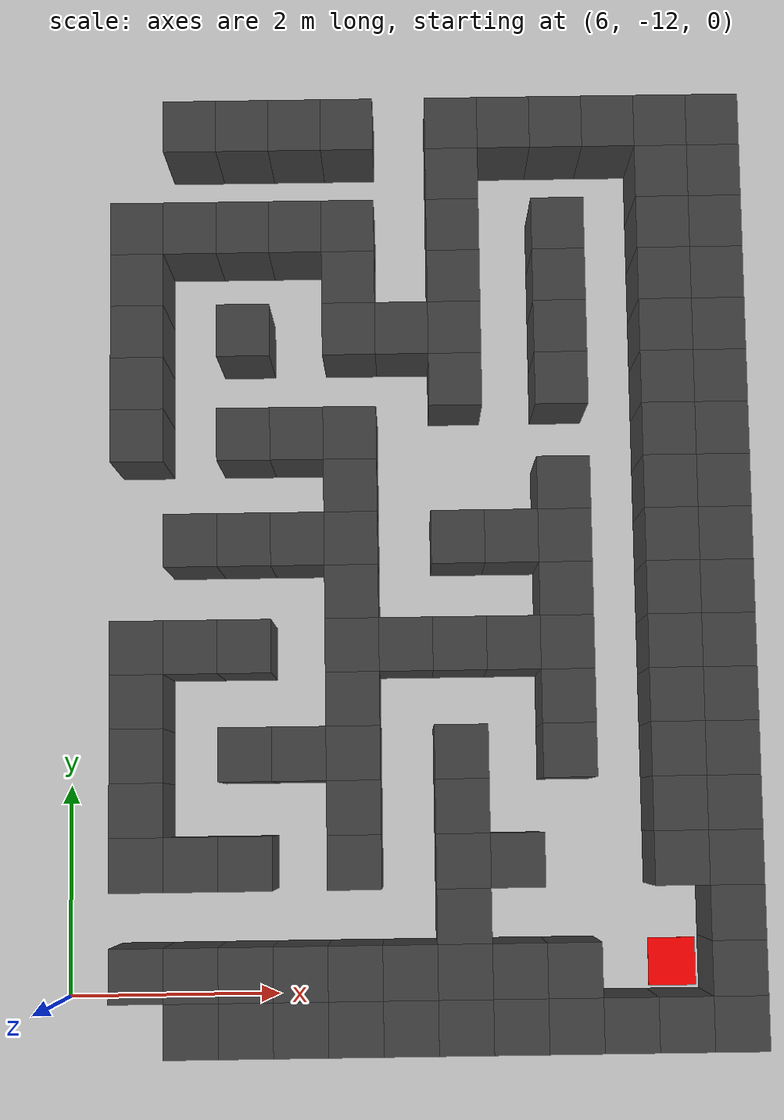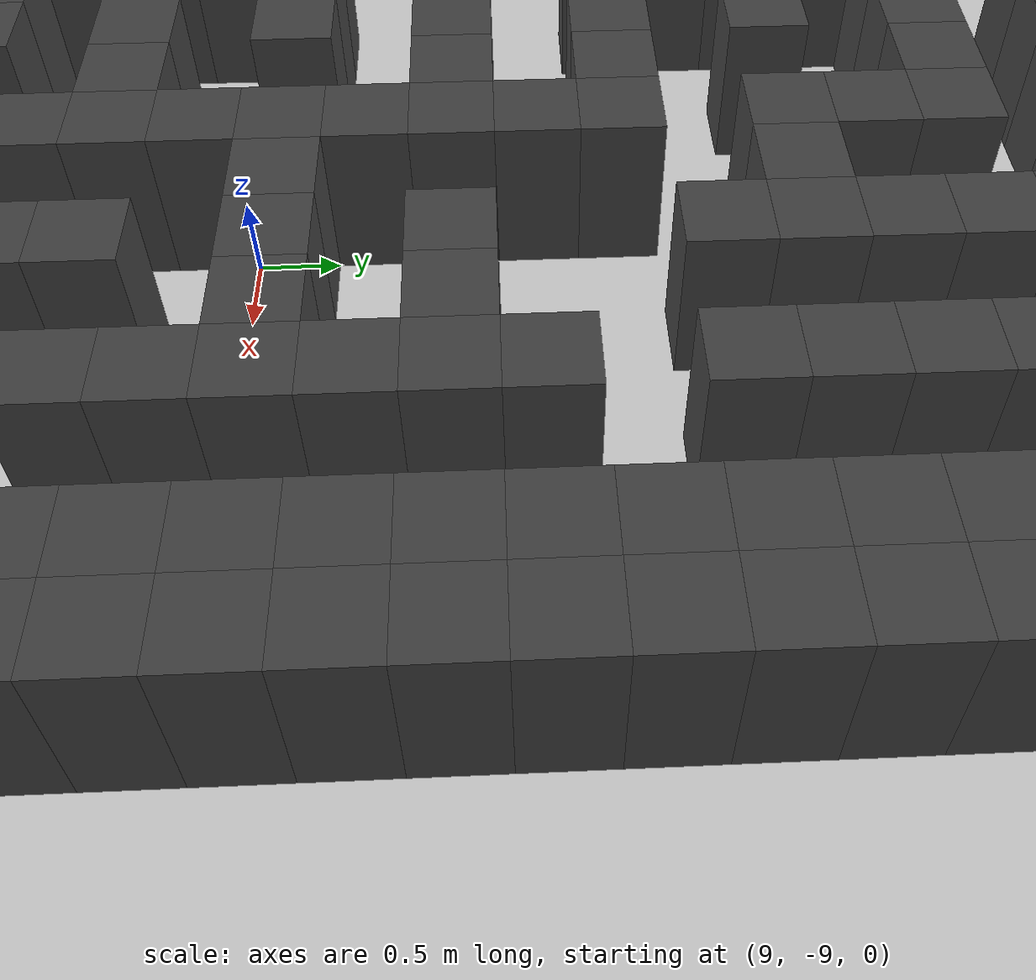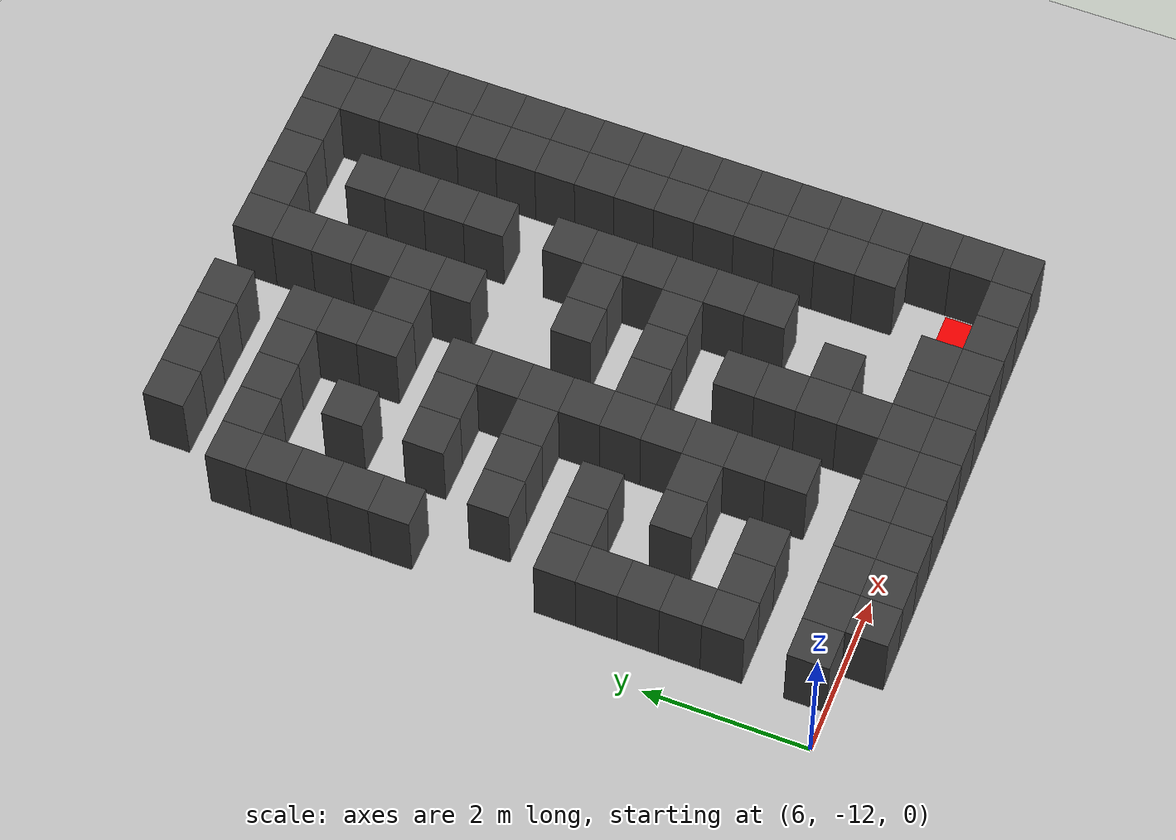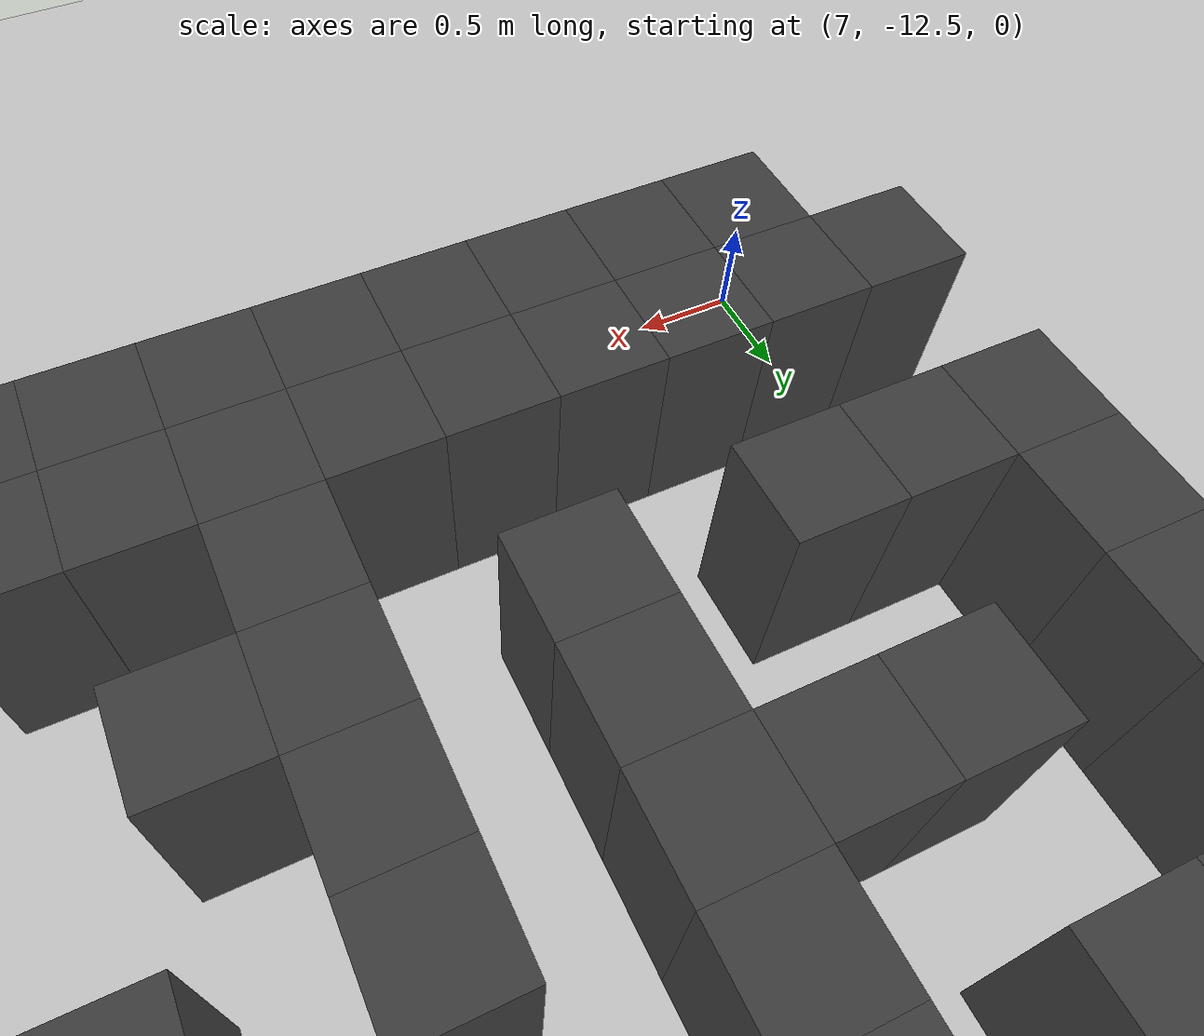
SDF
<sdf version="1.7">
 <world name="map_16668">
  <model name="ground_plane">
   <static>true</static>
   <link name="link">
    <collision name="collision">
     <geometry><plane><normal>0 0 1</normal><size>200 200</size></plane></geometry>
    </collision>
    <visual name="visual">
     <geometry><plane><normal>0 0 1</normal><size>200 200</size></plane></geometry>
     <material><ambient>0.8 0.8 0.8 1</ambient><diffuse>0.8 0.8 0.8 1</diffuse></material>
    </visual>
   </link>
  </model>
  <model name="maze_environment">
   <static>true</static>
   <link name="wall_791">
    <pose>7.250 -3.750 0.500 0 0 0</pose>
    <collision name="col"><geometry><box><size>0.5 0.5 1.0</size></box></geometry></collision>
    <visual name="vis">
     <geometry><box><size>0.5 0.5 1.0</size></box></geometry>
     <material><ambient>0.15 0.15 0.15 1</ambient><diffuse>0.25 0.25 0.25 1</diffuse></material>
    </visual>
   </link>
   <link name="wall_792">
    <pose>7.750 -3.750 0.500 0 0 0</pose>
    <collision name="col"><geometry><box><size>0.5 0.5 1.0</size></box></geometry></collision>
    <visual name="vis">
     <geometry><box><size>0.5 0.5 1.0</size></box></geometry>
     <material><ambient>0.15 0.15 0.15 1</ambient><diffuse>0.25 0.25 0.25 1</diffuse></material>
    </visual>
   </link>
   <link name="wall_793">
    <pose>8.250 -3.750 0.500 0 0 0</pose>
    <collision name="col"><geometry><box><size>0.5 0.5 1.0</size></box></geometry></collision>
    <visual name="vis">
     <geometry><box><size>0.5 0.5 1.0</size></box></geometry>
     <material><ambient>0.15 0.15 0.15 1</ambient><diffuse>0.25 0.25 0.25 1</diffuse></material>
    </visual>
   </link>
   <link name="wall_794">
    <pose>8.750 -3.750 0.500 0 0 0</pose>
    <collision name="col"><geometry><box><size>0.5 0.5 1.0</size></box></geometry></collision>
    <visual name="vis">
     <geometry><box><size>0.5 0.5 1.0</size></box></geometry>
     <material><ambient>0.15 0.15 0.15 1</ambient><diffuse>0.25 0.25 0.25 1</diffuse></material>
    </visual>
   </link>
   <link name="wall_795">
    <pose>9.750 -3.750 0.500 0 0 0</pose>
    <collision name="col"><geometry><box><size>0.5 0.5 1.0</size></box></geometry></collision>
    <visual name="vis">
     <geometry><box><size>0.5 0.5 1.0</size></box></geometry>
     <material><ambient>0.15 0.15 0.15 1</ambient><diffuse>0.25 0.25 0.25 1</diffuse></material>
    </visual>
   </link>
   <link name="wall_796">
    <pose>10.250 -3.750 0.500 0 0 0</pose>
    <collision name="col"><geometry><box><size>0.5 0.5 1.0</size></box></geometry></collision>
    <visual name="vis">
     <geometry><box><size>0.5 0.5 1.0</size></box></geometry>
     <material><ambient>0.15 0.15 0.15 1</ambient><diffuse>0.25 0.25 0.25 1</diffuse></material>
    </visual>
   </link>
   <link name="wall_797">
    <pose>10.750 -3.750 0.500 0 0 0</pose>
    <collision name="col"><geometry><box><size>0.5 0.5 1.0</size></box></geometry></collision>
    <visual name="vis">
     <geometry><box><size>0.5 0.5 1.0</size></box></geometry>
     <material><ambient>0.15 0.15 0.15 1</ambient><diffuse>0.25 0.25 0.25 1</diffuse></material>
    </visual>
   </link>
   <link name="wall_798">
    <pose>11.250 -3.750 0.500 0 0 0</pose>
    <collision name="col"><geometry><box><size>0.5 0.5 1.0</size></box></geometry></collision>
    <visual name="vis">
     <geometry><box><size>0.5 0.5 1.0</size></box></geometry>
     <material><ambient>0.15 0.15 0.15 1</ambient><diffuse>0.25 0.25 0.25 1</diffuse></material>
    </visual>
   </link>
   <link name="wall_799">
    <pose>11.750 -3.750 0.500 0 0 0</pose>
    <collision name="col"><geometry><box><size>0.5 0.5 1.0</size></box></geometry></collision>
    <visual name="vis">
     <geometry><box><size>0.5 0.5 1.0</size></box></geometry>
     <material><ambient>0.15 0.15 0.15 1</ambient><diffuse>0.25 0.25 0.25 1</diffuse></material>
    </visual>
   </link>
   <link name="wall_800">
    <pose>12.250 -3.750 0.500 0 0 0</pose>
    <collision name="col"><geometry><box><size>0.5 0.5 1.0</size></box></geometry></collision>
    <visual name="vis">
     <geometry><box><size>0.5 0.5 1.0</size></box></geometry>
     <material><ambient>0.15 0.15 0.15 1</ambient><diffuse>0.25 0.25 0.25 1</diffuse></material>
    </visual>
   </link>
   <link name="wall_810">
    <pose>9.750 -4.250 0.500 0 0 0</pose>
    <collision name="col"><geometry><box><size>0.5 0.5 1.0</size></box></geometry></collision>
    <visual name="vis">
     <geometry><box><size>0.5 0.5 1.0</size></box></geometry>
     <material><ambient>0.15 0.15 0.15 1</ambient><diffuse>0.25 0.25 0.25 1</diffuse></material>
    </visual>
   </link>
   <link name="wall_811">
    <pose>11.750 -4.250 0.500 0 0 0</pose>
    <collision name="col"><geometry><box><size>0.5 0.5 1.0</size></box></geometry></collision>
    <visual name="vis">
     <geometry><box><size>0.5 0.5 1.0</size></box></geometry>
     <material><ambient>0.15 0.15 0.15 1</ambient><diffuse>0.25 0.25 0.25 1</diffuse></material>
    </visual>
   </link>
   <link name="wall_812">
    <pose>12.250 -4.250 0.500 0 0 0</pose>
    <collision name="col"><geometry><box><size>0.5 0.5 1.0</size></box></geometry></collision>
    <visual name="vis">
     <geometry><box><size>0.5 0.5 1.0</size></box></geometry>
     <material><ambient>0.15 0.15 0.15 1</ambient><diffuse>0.25 0.25 0.25 1</diffuse></material>
    </visual>
   </link>
   <link name="wall_838">
    <pose>6.750 -4.750 0.500 0 0 0</pose>
    <collision name="col"><geometry><box><size>0.5 0.5 1.0</size></box></geometry></collision>
    <visual name="vis">
     <geometry><box><size>0.5 0.5 1.0</size></box></geometry>
     <material><ambient>0.15 0.15 0.15 1</ambient><diffuse>0.25 0.25 0.25 1</diffuse></material>
    </visual>
   </link>
   <link name="wall_839">
    <pose>7.250 -4.750 0.500 0 0 0</pose>
    <collision name="col"><geometry><box><size>0.5 0.5 1.0</size></box></geometry></collision>
    <visual name="vis">
     <geometry><box><size>0.5 0.5 1.0</size></box></geometry>
     <material><ambient>0.15 0.15 0.15 1</ambient><diffuse>0.25 0.25 0.25 1</diffuse></material>
    </visual>
   </link>
   <link name="wall_840">
    <pose>7.750 -4.750 0.500 0 0 0</pose>
    <collision name="col"><geometry><box><size>0.5 0.5 1.0</size></box></geometry></collision>
    <visual name="vis">
     <geometry><box><size>0.5 0.5 1.0</size></box></geometry>
     <material><ambient>0.15 0.15 0.15 1</ambient><diffuse>0.25 0.25 0.25 1</diffuse></material>
    </visual>
   </link>
   <link name="wall_841">
    <pose>8.250 -4.750 0.500 0 0 0</pose>
    <collision name="col"><geometry><box><size>0.5 0.5 1.0</size></box></geometry></collision>
    <visual name="vis">
     <geometry><box><size>0.5 0.5 1.0</size></box></geometry>
     <material><ambient>0.15 0.15 0.15 1</ambient><diffuse>0.25 0.25 0.25 1</diffuse></material>
    </visual>
   </link>
   <link name="wall_842">
    <pose>8.750 -4.750 0.500 0 0 0</pose>
    <collision name="col"><geometry><box><size>0.5 0.5 1.0</size></box></geometry></collision>
    <visual name="vis">
     <geometry><box><size>0.5 0.5 1.0</size></box></geometry>
     <material><ambient>0.15 0.15 0.15 1</ambient><diffuse>0.25 0.25 0.25 1</diffuse></material>
    </visual>
   </link>
   <link name="wall_843">
    <pose>9.750 -4.750 0.500 0 0 0</pose>
    <collision name="col"><geometry><box><size>0.5 0.5 1.0</size></box></geometry></collision>
    <visual name="vis">
     <geometry><box><size>0.5 0.5 1.0</size></box></geometry>
     <material><ambient>0.15 0.15 0.15 1</ambient><diffuse>0.25 0.25 0.25 1</diffuse></material>
    </visual>
   </link>
   <link name="wall_844">
    <pose>10.750 -4.750 0.500 0 0 0</pose>
    <collision name="col"><geometry><box><size>0.5 0.5 1.0</size></box></geometry></collision>
    <visual name="vis">
     <geometry><box><size>0.5 0.5 1.0</size></box></geometry>
     <material><ambient>0.15 0.15 0.15 1</ambient><diffuse>0.25 0.25 0.25 1</diffuse></material>
    </visual>
   </link>
   <link name="wall_845">
    <pose>11.750 -4.750 0.500 0 0 0</pose>
    <collision name="col"><geometry><box><size>0.5 0.5 1.0</size></box></geometry></collision>
    <visual name="vis">
     <geometry><box><size>0.5 0.5 1.0</size></box></geometry>
     <material><ambient>0.15 0.15 0.15 1</ambient><diffuse>0.25 0.25 0.25 1</diffuse></material>
    </visual>
   </link>
   <link name="wall_846">
    <pose>12.250 -4.750 0.500 0 0 0</pose>
    <collision name="col"><geometry><box><size>0.5 0.5 1.0</size></box></geometry></collision>
    <visual name="vis">
     <geometry><box><size>0.5 0.5 1.0</size></box></geometry>
     <material><ambient>0.15 0.15 0.15 1</ambient><diffuse>0.25 0.25 0.25 1</diffuse></material>
    </visual>
   </link>
   <link name="wall_857">
    <pose>6.750 -5.250 0.500 0 0 0</pose>
    <collision name="col"><geometry><box><size>0.5 0.5 1.0</size></box></geometry></collision>
    <visual name="vis">
     <geometry><box><size>0.5 0.5 1.0</size></box></geometry>
     <material><ambient>0.15 0.15 0.15 1</ambient><diffuse>0.25 0.25 0.25 1</diffuse></material>
    </visual>
   </link>
   <link name="wall_858">
    <pose>8.750 -5.250 0.500 0 0 0</pose>
    <collision name="col"><geometry><box><size>0.5 0.5 1.0</size></box></geometry></collision>
    <visual name="vis">
     <geometry><box><size>0.5 0.5 1.0</size></box></geometry>
     <material><ambient>0.15 0.15 0.15 1</ambient><diffuse>0.25 0.25 0.25 1</diffuse></material>
    </visual>
   </link>
   <link name="wall_859">
    <pose>9.750 -5.250 0.500 0 0 0</pose>
    <collision name="col"><geometry><box><size>0.5 0.5 1.0</size></box></geometry></collision>
    <visual name="vis">
     <geometry><box><size>0.5 0.5 1.0</size></box></geometry>
     <material><ambient>0.15 0.15 0.15 1</ambient><diffuse>0.25 0.25 0.25 1</diffuse></material>
    </visual>
   </link>
   <link name="wall_860">
    <pose>10.750 -5.250 0.500 0 0 0</pose>
    <collision name="col"><geometry><box><size>0.5 0.5 1.0</size></box></geometry></collision>
    <visual name="vis">
     <geometry><box><size>0.5 0.5 1.0</size></box></geometry>
     <material><ambient>0.15 0.15 0.15 1</ambient><diffuse>0.25 0.25 0.25 1</diffuse></material>
    </visual>
   </link>
   <link name="wall_861">
    <pose>11.750 -5.250 0.500 0 0 0</pose>
    <collision name="col"><geometry><box><size>0.5 0.5 1.0</size></box></geometry></collision>
    <visual name="vis">
     <geometry><box><size>0.5 0.5 1.0</size></box></geometry>
     <material><ambient>0.15 0.15 0.15 1</ambient><diffuse>0.25 0.25 0.25 1</diffuse></material>
    </visual>
   </link>
   <link name="wall_862">
    <pose>12.250 -5.250 0.500 0 0 0</pose>
    <collision name="col"><geometry><box><size>0.5 0.5 1.0</size></box></geometry></collision>
    <visual name="vis">
     <geometry><box><size>0.5 0.5 1.0</size></box></geometry>
     <material><ambient>0.15 0.15 0.15 1</ambient><diffuse>0.25 0.25 0.25 1</diffuse></material>
    </visual>
   </link>
   <link name="wall_887">
    <pose>6.750 -5.750 0.500 0 0 0</pose>
    <collision name="col"><geometry><box><size>0.5 0.5 1.0</size></box></geometry></collision>
    <visual name="vis">
     <geometry><box><size>0.5 0.5 1.0</size></box></geometry>
     <material><ambient>0.15 0.15 0.15 1</ambient><diffuse>0.25 0.25 0.25 1</diffuse></material>
    </visual>
   </link>
   <link name="wall_888">
    <pose>7.750 -5.750 0.500 0 0 0</pose>
    <collision name="col"><geometry><box><size>0.5 0.5 1.0</size></box></geometry></collision>
    <visual name="vis">
     <geometry><box><size>0.5 0.5 1.0</size></box></geometry>
     <material><ambient>0.15 0.15 0.15 1</ambient><diffuse>0.25 0.25 0.25 1</diffuse></material>
    </visual>
   </link>
   <link name="wall_889">
    <pose>8.750 -5.750 0.500 0 0 0</pose>
    <collision name="col"><geometry><box><size>0.5 0.5 1.0</size></box></geometry></collision>
    <visual name="vis">
     <geometry><box><size>0.5 0.5 1.0</size></box></geometry>
     <material><ambient>0.15 0.15 0.15 1</ambient><diffuse>0.25 0.25 0.25 1</diffuse></material>
    </visual>
   </link>
   <link name="wall_890">
    <pose>9.250 -5.750 0.500 0 0 0</pose>
    <collision name="col"><geometry><box><size>0.5 0.5 1.0</size></box></geometry></collision>
    <visual name="vis">
     <geometry><box><size>0.5 0.5 1.0</size></box></geometry>
     <material><ambient>0.15 0.15 0.15 1</ambient><diffuse>0.25 0.25 0.25 1</diffuse></material>
    </visual>
   </link>
   <link name="wall_891">
    <pose>9.750 -5.750 0.500 0 0 0</pose>
    <collision name="col"><geometry><box><size>0.5 0.5 1.0</size></box></geometry></collision>
    <visual name="vis">
     <geometry><box><size>0.5 0.5 1.0</size></box></geometry>
     <material><ambient>0.15 0.15 0.15 1</ambient><diffuse>0.25 0.25 0.25 1</diffuse></material>
    </visual>
   </link>
   <link name="wall_892">
    <pose>10.750 -5.750 0.500 0 0 0</pose>
    <collision name="col"><geometry><box><size>0.5 0.5 1.0</size></box></geometry></collision>
    <visual name="vis">
     <geometry><box><size>0.5 0.5 1.0</size></box></geometry>
     <material><ambient>0.15 0.15 0.15 1</ambient><diffuse>0.25 0.25 0.25 1</diffuse></material>
    </visual>
   </link>
   <link name="wall_893">
    <pose>11.750 -5.750 0.500 0 0 0</pose>
    <collision name="col"><geometry><box><size>0.5 0.5 1.0</size></box></geometry></collision>
    <visual name="vis">
     <geometry><box><size>0.5 0.5 1.0</size></box></geometry>
     <material><ambient>0.15 0.15 0.15 1</ambient><diffuse>0.25 0.25 0.25 1</diffuse></material>
    </visual>
   </link>
   <link name="wall_894">
    <pose>12.250 -5.750 0.500 0 0 0</pose>
    <collision name="col"><geometry><box><size>0.5 0.5 1.0</size></box></geometry></collision>
    <visual name="vis">
     <geometry><box><size>0.5 0.5 1.0</size></box></geometry>
     <material><ambient>0.15 0.15 0.15 1</ambient><diffuse>0.25 0.25 0.25 1</diffuse></material>
    </visual>
   </link>
   <link name="wall_905">
    <pose>6.750 -6.250 0.500 0 0 0</pose>
    <collision name="col"><geometry><box><size>0.5 0.5 1.0</size></box></geometry></collision>
    <visual name="vis">
     <geometry><box><size>0.5 0.5 1.0</size></box></geometry>
     <material><ambient>0.15 0.15 0.15 1</ambient><diffuse>0.25 0.25 0.25 1</diffuse></material>
    </visual>
   </link>
   <link name="wall_906">
    <pose>9.750 -6.250 0.500 0 0 0</pose>
    <collision name="col"><geometry><box><size>0.5 0.5 1.0</size></box></geometry></collision>
    <visual name="vis">
     <geometry><box><size>0.5 0.5 1.0</size></box></geometry>
     <material><ambient>0.15 0.15 0.15 1</ambient><diffuse>0.25 0.25 0.25 1</diffuse></material>
    </visual>
   </link>
   <link name="wall_907">
    <pose>10.750 -6.250 0.500 0 0 0</pose>
    <collision name="col"><geometry><box><size>0.5 0.5 1.0</size></box></geometry></collision>
    <visual name="vis">
     <geometry><box><size>0.5 0.5 1.0</size></box></geometry>
     <material><ambient>0.15 0.15 0.15 1</ambient><diffuse>0.25 0.25 0.25 1</diffuse></material>
    </visual>
   </link>
   <link name="wall_908">
    <pose>11.750 -6.250 0.500 0 0 0</pose>
    <collision name="col"><geometry><box><size>0.5 0.5 1.0</size></box></geometry></collision>
    <visual name="vis">
     <geometry><box><size>0.5 0.5 1.0</size></box></geometry>
     <material><ambient>0.15 0.15 0.15 1</ambient><diffuse>0.25 0.25 0.25 1</diffuse></material>
    </visual>
   </link>
   <link name="wall_909">
    <pose>12.250 -6.250 0.500 0 0 0</pose>
    <collision name="col"><geometry><box><size>0.5 0.5 1.0</size></box></geometry></collision>
    <visual name="vis">
     <geometry><box><size>0.5 0.5 1.0</size></box></geometry>
     <material><ambient>0.15 0.15 0.15 1</ambient><diffuse>0.25 0.25 0.25 1</diffuse></material>
    </visual>
   </link>
   <link name="wall_935">
    <pose>6.750 -6.750 0.500 0 0 0</pose>
    <collision name="col"><geometry><box><size>0.5 0.5 1.0</size></box></geometry></collision>
    <visual name="vis">
     <geometry><box><size>0.5 0.5 1.0</size></box></geometry>
     <material><ambient>0.15 0.15 0.15 1</ambient><diffuse>0.25 0.25 0.25 1</diffuse></material>
    </visual>
   </link>
   <link name="wall_936">
    <pose>7.750 -6.750 0.500 0 0 0</pose>
    <collision name="col"><geometry><box><size>0.5 0.5 1.0</size></box></geometry></collision>
    <visual name="vis">
     <geometry><box><size>0.5 0.5 1.0</size></box></geometry>
     <material><ambient>0.15 0.15 0.15 1</ambient><diffuse>0.25 0.25 0.25 1</diffuse></material>
    </visual>
   </link>
   <link name="wall_937">
    <pose>8.250 -6.750 0.500 0 0 0</pose>
    <collision name="col"><geometry><box><size>0.5 0.5 1.0</size></box></geometry></collision>
    <visual name="vis">
     <geometry><box><size>0.5 0.5 1.0</size></box></geometry>
     <material><ambient>0.15 0.15 0.15 1</ambient><diffuse>0.25 0.25 0.25 1</diffuse></material>
    </visual>
   </link>
   <link name="wall_938">
    <pose>8.750 -6.750 0.500 0 0 0</pose>
    <collision name="col"><geometry><box><size>0.5 0.5 1.0</size></box></geometry></collision>
    <visual name="vis">
     <geometry><box><size>0.5 0.5 1.0</size></box></geometry>
     <material><ambient>0.15 0.15 0.15 1</ambient><diffuse>0.25 0.25 0.25 1</diffuse></material>
    </visual>
   </link>
   <link name="wall_939">
    <pose>11.750 -6.750 0.500 0 0 0</pose>
    <collision name="col"><geometry><box><size>0.5 0.5 1.0</size></box></geometry></collision>
    <visual name="vis">
     <geometry><box><size>0.5 0.5 1.0</size></box></geometry>
     <material><ambient>0.15 0.15 0.15 1</ambient><diffuse>0.25 0.25 0.25 1</diffuse></material>
    </visual>
   </link>
   <link name="wall_940">
    <pose>12.250 -6.750 0.500 0 0 0</pose>
    <collision name="col"><geometry><box><size>0.5 0.5 1.0</size></box></geometry></collision>
    <visual name="vis">
     <geometry><box><size>0.5 0.5 1.0</size></box></geometry>
     <material><ambient>0.15 0.15 0.15 1</ambient><diffuse>0.25 0.25 0.25 1</diffuse></material>
    </visual>
   </link>
   <link name="wall_952">
    <pose>8.750 -7.250 0.500 0 0 0</pose>
    <collision name="col"><geometry><box><size>0.5 0.5 1.0</size></box></geometry></collision>
    <visual name="vis">
     <geometry><box><size>0.5 0.5 1.0</size></box></geometry>
     <material><ambient>0.15 0.15 0.15 1</ambient><diffuse>0.25 0.25 0.25 1</diffuse></material>
    </visual>
   </link>
   <link name="wall_953">
    <pose>10.750 -7.250 0.500 0 0 0</pose>
    <collision name="col"><geometry><box><size>0.5 0.5 1.0</size></box></geometry></collision>
    <visual name="vis">
     <geometry><box><size>0.5 0.5 1.0</size></box></geometry>
     <material><ambient>0.15 0.15 0.15 1</ambient><diffuse>0.25 0.25 0.25 1</diffuse></material>
    </visual>
   </link>
   <link name="wall_954">
    <pose>11.750 -7.250 0.500 0 0 0</pose>
    <collision name="col"><geometry><box><size>0.5 0.5 1.0</size></box></geometry></collision>
    <visual name="vis">
     <geometry><box><size>0.5 0.5 1.0</size></box></geometry>
     <material><ambient>0.15 0.15 0.15 1</ambient><diffuse>0.25 0.25 0.25 1</diffuse></material>
    </visual>
   </link>
   <link name="wall_955">
    <pose>12.250 -7.250 0.500 0 0 0</pose>
    <collision name="col"><geometry><box><size>0.5 0.5 1.0</size></box></geometry></collision>
    <visual name="vis">
     <geometry><box><size>0.5 0.5 1.0</size></box></geometry>
     <material><ambient>0.15 0.15 0.15 1</ambient><diffuse>0.25 0.25 0.25 1</diffuse></material>
    </visual>
   </link>
   <link name="wall_982">
    <pose>7.250 -7.750 0.500 0 0 0</pose>
    <collision name="col"><geometry><box><size>0.5 0.5 1.0</size></box></geometry></collision>
    <visual name="vis">
     <geometry><box><size>0.5 0.5 1.0</size></box></geometry>
     <material><ambient>0.15 0.15 0.15 1</ambient><diffuse>0.25 0.25 0.25 1</diffuse></material>
    </visual>
   </link>
   <link name="wall_983">
    <pose>7.750 -7.750 0.500 0 0 0</pose>
    <collision name="col"><geometry><box><size>0.5 0.5 1.0</size></box></geometry></collision>
    <visual name="vis">
     <geometry><box><size>0.5 0.5 1.0</size></box></geometry>
     <material><ambient>0.15 0.15 0.15 1</ambient><diffuse>0.25 0.25 0.25 1</diffuse></material>
    </visual>
   </link>
   <link name="wall_984">
    <pose>8.250 -7.750 0.500 0 0 0</pose>
    <collision name="col"><geometry><box><size>0.5 0.5 1.0</size></box></geometry></collision>
    <visual name="vis">
     <geometry><box><size>0.5 0.5 1.0</size></box></geometry>
     <material><ambient>0.15 0.15 0.15 1</ambient><diffuse>0.25 0.25 0.25 1</diffuse></material>
    </visual>
   </link>
   <link name="wall_985">
    <pose>8.750 -7.750 0.500 0 0 0</pose>
    <collision name="col"><geometry><box><size>0.5 0.5 1.0</size></box></geometry></collision>
    <visual name="vis">
     <geometry><box><size>0.5 0.5 1.0</size></box></geometry>
     <material><ambient>0.15 0.15 0.15 1</ambient><diffuse>0.25 0.25 0.25 1</diffuse></material>
    </visual>
   </link>
   <link name="wall_986">
    <pose>9.750 -7.750 0.500 0 0 0</pose>
    <collision name="col"><geometry><box><size>0.5 0.5 1.0</size></box></geometry></collision>
    <visual name="vis">
     <geometry><box><size>0.5 0.5 1.0</size></box></geometry>
     <material><ambient>0.15 0.15 0.15 1</ambient><diffuse>0.25 0.25 0.25 1</diffuse></material>
    </visual>
   </link>
   <link name="wall_987">
    <pose>10.250 -7.750 0.500 0 0 0</pose>
    <collision name="col"><geometry><box><size>0.5 0.5 1.0</size></box></geometry></collision>
    <visual name="vis">
     <geometry><box><size>0.5 0.5 1.0</size></box></geometry>
     <material><ambient>0.15 0.15 0.15 1</ambient><diffuse>0.25 0.25 0.25 1</diffuse></material>
    </visual>
   </link>
   <link name="wall_988">
    <pose>10.750 -7.750 0.500 0 0 0</pose>
    <collision name="col"><geometry><box><size>0.5 0.5 1.0</size></box></geometry></collision>
    <visual name="vis">
     <geometry><box><size>0.5 0.5 1.0</size></box></geometry>
     <material><ambient>0.15 0.15 0.15 1</ambient><diffuse>0.25 0.25 0.25 1</diffuse></material>
    </visual>
   </link>
   <link name="wall_989">
    <pose>11.750 -7.750 0.500 0 0 0</pose>
    <collision name="col"><geometry><box><size>0.5 0.5 1.0</size></box></geometry></collision>
    <visual name="vis">
     <geometry><box><size>0.5 0.5 1.0</size></box></geometry>
     <material><ambient>0.15 0.15 0.15 1</ambient><diffuse>0.25 0.25 0.25 1</diffuse></material>
    </visual>
   </link>
   <link name="wall_990">
    <pose>12.250 -7.750 0.500 0 0 0</pose>
    <collision name="col"><geometry><box><size>0.5 0.5 1.0</size></box></geometry></collision>
    <visual name="vis">
     <geometry><box><size>0.5 0.5 1.0</size></box></geometry>
     <material><ambient>0.15 0.15 0.15 1</ambient><diffuse>0.25 0.25 0.25 1</diffuse></material>
    </visual>
   </link>
   <link name="wall_1002">
    <pose>8.750 -8.250 0.500 0 0 0</pose>
    <collision name="col"><geometry><box><size>0.5 0.5 1.0</size></box></geometry></collision>
    <visual name="vis">
     <geometry><box><size>0.5 0.5 1.0</size></box></geometry>
     <material><ambient>0.15 0.15 0.15 1</ambient><diffuse>0.25 0.25 0.25 1</diffuse></material>
    </visual>
   </link>
   <link name="wall_1003">
    <pose>10.750 -8.250 0.500 0 0 0</pose>
    <collision name="col"><geometry><box><size>0.5 0.5 1.0</size></box></geometry></collision>
    <visual name="vis">
     <geometry><box><size>0.5 0.5 1.0</size></box></geometry>
     <material><ambient>0.15 0.15 0.15 1</ambient><diffuse>0.25 0.25 0.25 1</diffuse></material>
    </visual>
   </link>
   <link name="wall_1004">
    <pose>11.750 -8.250 0.500 0 0 0</pose>
    <collision name="col"><geometry><box><size>0.5 0.5 1.0</size></box></geometry></collision>
    <visual name="vis">
     <geometry><box><size>0.5 0.5 1.0</size></box></geometry>
     <material><ambient>0.15 0.15 0.15 1</ambient><diffuse>0.25 0.25 0.25 1</diffuse></material>
    </visual>
   </link>
   <link name="wall_1005">
    <pose>12.250 -8.250 0.500 0 0 0</pose>
    <collision name="col"><geometry><box><size>0.5 0.5 1.0</size></box></geometry></collision>
    <visual name="vis">
     <geometry><box><size>0.5 0.5 1.0</size></box></geometry>
     <material><ambient>0.15 0.15 0.15 1</ambient><diffuse>0.25 0.25 0.25 1</diffuse></material>
    </visual>
   </link>
   <link name="wall_1030">
    <pose>6.750 -8.750 0.500 0 0 0</pose>
    <collision name="col"><geometry><box><size>0.5 0.5 1.0</size></box></geometry></collision>
    <visual name="vis">
     <geometry><box><size>0.5 0.5 1.0</size></box></geometry>
     <material><ambient>0.15 0.15 0.15 1</ambient><diffuse>0.25 0.25 0.25 1</diffuse></material>
    </visual>
   </link>
   <link name="wall_1031">
    <pose>7.250 -8.750 0.500 0 0 0</pose>
    <collision name="col"><geometry><box><size>0.5 0.5 1.0</size></box></geometry></collision>
    <visual name="vis">
     <geometry><box><size>0.5 0.5 1.0</size></box></geometry>
     <material><ambient>0.15 0.15 0.15 1</ambient><diffuse>0.25 0.25 0.25 1</diffuse></material>
    </visual>
   </link>
   <link name="wall_1032">
    <pose>7.750 -8.750 0.500 0 0 0</pose>
    <collision name="col"><geometry><box><size>0.5 0.5 1.0</size></box></geometry></collision>
    <visual name="vis">
     <geometry><box><size>0.5 0.5 1.0</size></box></geometry>
     <material><ambient>0.15 0.15 0.15 1</ambient><diffuse>0.25 0.25 0.25 1</diffuse></material>
    </visual>
   </link>
   <link name="wall_1033">
    <pose>8.750 -8.750 0.500 0 0 0</pose>
    <collision name="col"><geometry><box><size>0.5 0.5 1.0</size></box></geometry></collision>
    <visual name="vis">
     <geometry><box><size>0.5 0.5 1.0</size></box></geometry>
     <material><ambient>0.15 0.15 0.15 1</ambient><diffuse>0.25 0.25 0.25 1</diffuse></material>
    </visual>
   </link>
   <link name="wall_1034">
    <pose>9.250 -8.750 0.500 0 0 0</pose>
    <collision name="col"><geometry><box><size>0.5 0.5 1.0</size></box></geometry></collision>
    <visual name="vis">
     <geometry><box><size>0.5 0.5 1.0</size></box></geometry>
     <material><ambient>0.15 0.15 0.15 1</ambient><diffuse>0.25 0.25 0.25 1</diffuse></material>
    </visual>
   </link>
   <link name="wall_1035">
    <pose>9.750 -8.750 0.500 0 0 0</pose>
    <collision name="col"><geometry><box><size>0.5 0.5 1.0</size></box></geometry></collision>
    <visual name="vis">
     <geometry><box><size>0.5 0.5 1.0</size></box></geometry>
     <material><ambient>0.15 0.15 0.15 1</ambient><diffuse>0.25 0.25 0.25 1</diffuse></material>
    </visual>
   </link>
   <link name="wall_1036">
    <pose>10.250 -8.750 0.500 0 0 0</pose>
    <collision name="col"><geometry><box><size>0.5 0.5 1.0</size></box></geometry></collision>
    <visual name="vis">
     <geometry><box><size>0.5 0.5 1.0</size></box></geometry>
     <material><ambient>0.15 0.15 0.15 1</ambient><diffuse>0.25 0.25 0.25 1</diffuse></material>
    </visual>
   </link>
   <link name="wall_1037">
    <pose>10.750 -8.750 0.500 0 0 0</pose>
    <collision name="col"><geometry><box><size>0.5 0.5 1.0</size></box></geometry></collision>
    <visual name="vis">
     <geometry><box><size>0.5 0.5 1.0</size></box></geometry>
     <material><ambient>0.15 0.15 0.15 1</ambient><diffuse>0.25 0.25 0.25 1</diffuse></material>
    </visual>
   </link>
   <link name="wall_1038">
    <pose>11.750 -8.750 0.500 0 0 0</pose>
    <collision name="col"><geometry><box><size>0.5 0.5 1.0</size></box></geometry></collision>
    <visual name="vis">
     <geometry><box><size>0.5 0.5 1.0</size></box></geometry>
     <material><ambient>0.15 0.15 0.15 1</ambient><diffuse>0.25 0.25 0.25 1</diffuse></material>
    </visual>
   </link>
   <link name="wall_1039">
    <pose>12.250 -8.750 0.500 0 0 0</pose>
    <collision name="col"><geometry><box><size>0.5 0.5 1.0</size></box></geometry></collision>
    <visual name="vis">
     <geometry><box><size>0.5 0.5 1.0</size></box></geometry>
     <material><ambient>0.15 0.15 0.15 1</ambient><diffuse>0.25 0.25 0.25 1</diffuse></material>
    </visual>
   </link>
   <link name="wall_1050">
    <pose>6.750 -9.250 0.500 0 0 0</pose>
    <collision name="col"><geometry><box><size>0.5 0.5 1.0</size></box></geometry></collision>
    <visual name="vis">
     <geometry><box><size>0.5 0.5 1.0</size></box></geometry>
     <material><ambient>0.15 0.15 0.15 1</ambient><diffuse>0.25 0.25 0.25 1</diffuse></material>
    </visual>
   </link>
   <link name="wall_1051">
    <pose>8.750 -9.250 0.500 0 0 0</pose>
    <collision name="col"><geometry><box><size>0.5 0.5 1.0</size></box></geometry></collision>
    <visual name="vis">
     <geometry><box><size>0.5 0.5 1.0</size></box></geometry>
     <material><ambient>0.15 0.15 0.15 1</ambient><diffuse>0.25 0.25 0.25 1</diffuse></material>
    </visual>
   </link>
   <link name="wall_1052">
    <pose>10.750 -9.250 0.500 0 0 0</pose>
    <collision name="col"><geometry><box><size>0.5 0.5 1.0</size></box></geometry></collision>
    <visual name="vis">
     <geometry><box><size>0.5 0.5 1.0</size></box></geometry>
     <material><ambient>0.15 0.15 0.15 1</ambient><diffuse>0.25 0.25 0.25 1</diffuse></material>
    </visual>
   </link>
   <link name="wall_1053">
    <pose>11.750 -9.250 0.500 0 0 0</pose>
    <collision name="col"><geometry><box><size>0.5 0.5 1.0</size></box></geometry></collision>
    <visual name="vis">
     <geometry><box><size>0.5 0.5 1.0</size></box></geometry>
     <material><ambient>0.15 0.15 0.15 1</ambient><diffuse>0.25 0.25 0.25 1</diffuse></material>
    </visual>
   </link>
   <link name="wall_1054">
    <pose>12.250 -9.250 0.500 0 0 0</pose>
    <collision name="col"><geometry><box><size>0.5 0.5 1.0</size></box></geometry></collision>
    <visual name="vis">
     <geometry><box><size>0.5 0.5 1.0</size></box></geometry>
     <material><ambient>0.15 0.15 0.15 1</ambient><diffuse>0.25 0.25 0.25 1</diffuse></material>
    </visual>
   </link>
   <link name="wall_1080">
    <pose>6.750 -9.750 0.500 0 0 0</pose>
    <collision name="col"><geometry><box><size>0.5 0.5 1.0</size></box></geometry></collision>
    <visual name="vis">
     <geometry><box><size>0.5 0.5 1.0</size></box></geometry>
     <material><ambient>0.15 0.15 0.15 1</ambient><diffuse>0.25 0.25 0.25 1</diffuse></material>
    </visual>
   </link>
   <link name="wall_1081">
    <pose>7.750 -9.750 0.500 0 0 0</pose>
    <collision name="col"><geometry><box><size>0.5 0.5 1.0</size></box></geometry></collision>
    <visual name="vis">
     <geometry><box><size>0.5 0.5 1.0</size></box></geometry>
     <material><ambient>0.15 0.15 0.15 1</ambient><diffuse>0.25 0.25 0.25 1</diffuse></material>
    </visual>
   </link>
   <link name="wall_1082">
    <pose>8.250 -9.750 0.500 0 0 0</pose>
    <collision name="col"><geometry><box><size>0.5 0.5 1.0</size></box></geometry></collision>
    <visual name="vis">
     <geometry><box><size>0.5 0.5 1.0</size></box></geometry>
     <material><ambient>0.15 0.15 0.15 1</ambient><diffuse>0.25 0.25 0.25 1</diffuse></material>
    </visual>
   </link>
   <link name="wall_1083">
    <pose>8.750 -9.750 0.500 0 0 0</pose>
    <collision name="col"><geometry><box><size>0.5 0.5 1.0</size></box></geometry></collision>
    <visual name="vis">
     <geometry><box><size>0.5 0.5 1.0</size></box></geometry>
     <material><ambient>0.15 0.15 0.15 1</ambient><diffuse>0.25 0.25 0.25 1</diffuse></material>
    </visual>
   </link>
   <link name="wall_1084">
    <pose>9.750 -9.750 0.500 0 0 0</pose>
    <collision name="col"><geometry><box><size>0.5 0.5 1.0</size></box></geometry></collision>
    <visual name="vis">
     <geometry><box><size>0.5 0.5 1.0</size></box></geometry>
     <material><ambient>0.15 0.15 0.15 1</ambient><diffuse>0.25 0.25 0.25 1</diffuse></material>
    </visual>
   </link>
   <link name="wall_1085">
    <pose>10.750 -9.750 0.500 0 0 0</pose>
    <collision name="col"><geometry><box><size>0.5 0.5 1.0</size></box></geometry></collision>
    <visual name="vis">
     <geometry><box><size>0.5 0.5 1.0</size></box></geometry>
     <material><ambient>0.15 0.15 0.15 1</ambient><diffuse>0.25 0.25 0.25 1</diffuse></material>
    </visual>
   </link>
   <link name="wall_1086">
    <pose>11.750 -9.750 0.500 0 0 0</pose>
    <collision name="col"><geometry><box><size>0.5 0.5 1.0</size></box></geometry></collision>
    <visual name="vis">
     <geometry><box><size>0.5 0.5 1.0</size></box></geometry>
     <material><ambient>0.15 0.15 0.15 1</ambient><diffuse>0.25 0.25 0.25 1</diffuse></material>
    </visual>
   </link>
   <link name="wall_1087">
    <pose>12.250 -9.750 0.500 0 0 0</pose>
    <collision name="col"><geometry><box><size>0.5 0.5 1.0</size></box></geometry></collision>
    <visual name="vis">
     <geometry><box><size>0.5 0.5 1.0</size></box></geometry>
     <material><ambient>0.15 0.15 0.15 1</ambient><diffuse>0.25 0.25 0.25 1</diffuse></material>
    </visual>
   </link>
   <link name="wall_1099">
    <pose>6.750 -10.250 0.500 0 0 0</pose>
    <collision name="col"><geometry><box><size>0.5 0.5 1.0</size></box></geometry></collision>
    <visual name="vis">
     <geometry><box><size>0.5 0.5 1.0</size></box></geometry>
     <material><ambient>0.15 0.15 0.15 1</ambient><diffuse>0.25 0.25 0.25 1</diffuse></material>
    </visual>
   </link>
   <link name="wall_1100">
    <pose>8.750 -10.250 0.500 0 0 0</pose>
    <collision name="col"><geometry><box><size>0.5 0.5 1.0</size></box></geometry></collision>
    <visual name="vis">
     <geometry><box><size>0.5 0.5 1.0</size></box></geometry>
     <material><ambient>0.15 0.15 0.15 1</ambient><diffuse>0.25 0.25 0.25 1</diffuse></material>
    </visual>
   </link>
   <link name="wall_1101">
    <pose>9.750 -10.250 0.500 0 0 0</pose>
    <collision name="col"><geometry><box><size>0.5 0.5 1.0</size></box></geometry></collision>
    <visual name="vis">
     <geometry><box><size>0.5 0.5 1.0</size></box></geometry>
     <material><ambient>0.15 0.15 0.15 1</ambient><diffuse>0.25 0.25 0.25 1</diffuse></material>
    </visual>
   </link>
   <link name="wall_1102">
    <pose>11.750 -10.250 0.500 0 0 0</pose>
    <collision name="col"><geometry><box><size>0.5 0.5 1.0</size></box></geometry></collision>
    <visual name="vis">
     <geometry><box><size>0.5 0.5 1.0</size></box></geometry>
     <material><ambient>0.15 0.15 0.15 1</ambient><diffuse>0.25 0.25 0.25 1</diffuse></material>
    </visual>
   </link>
   <link name="wall_1103">
    <pose>12.250 -10.250 0.500 0 0 0</pose>
    <collision name="col"><geometry><box><size>0.5 0.5 1.0</size></box></geometry></collision>
    <visual name="vis">
     <geometry><box><size>0.5 0.5 1.0</size></box></geometry>
     <material><ambient>0.15 0.15 0.15 1</ambient><diffuse>0.25 0.25 0.25 1</diffuse></material>
    </visual>
   </link>
   <link name="wall_1133">
    <pose>6.750 -10.750 0.500 0 0 0</pose>
    <collision name="col"><geometry><box><size>0.5 0.5 1.0</size></box></geometry></collision>
    <visual name="vis">
     <geometry><box><size>0.5 0.5 1.0</size></box></geometry>
     <material><ambient>0.15 0.15 0.15 1</ambient><diffuse>0.25 0.25 0.25 1</diffuse></material>
    </visual>
   </link>
   <link name="wall_1134">
    <pose>7.250 -10.750 0.500 0 0 0</pose>
    <collision name="col"><geometry><box><size>0.5 0.5 1.0</size></box></geometry></collision>
    <visual name="vis">
     <geometry><box><size>0.5 0.5 1.0</size></box></geometry>
     <material><ambient>0.15 0.15 0.15 1</ambient><diffuse>0.25 0.25 0.25 1</diffuse></material>
    </visual>
   </link>
   <link name="wall_1135">
    <pose>7.750 -10.750 0.500 0 0 0</pose>
    <collision name="col"><geometry><box><size>0.5 0.5 1.0</size></box></geometry></collision>
    <visual name="vis">
     <geometry><box><size>0.5 0.5 1.0</size></box></geometry>
     <material><ambient>0.15 0.15 0.15 1</ambient><diffuse>0.25 0.25 0.25 1</diffuse></material>
    </visual>
   </link>
   <link name="wall_1136">
    <pose>8.750 -10.750 0.500 0 0 0</pose>
    <collision name="col"><geometry><box><size>0.5 0.5 1.0</size></box></geometry></collision>
    <visual name="vis">
     <geometry><box><size>0.5 0.5 1.0</size></box></geometry>
     <material><ambient>0.15 0.15 0.15 1</ambient><diffuse>0.25 0.25 0.25 1</diffuse></material>
    </visual>
   </link>
   <link name="wall_1137">
    <pose>9.750 -10.750 0.500 0 0 0</pose>
    <collision name="col"><geometry><box><size>0.5 0.5 1.0</size></box></geometry></collision>
    <visual name="vis">
     <geometry><box><size>0.5 0.5 1.0</size></box></geometry>
     <material><ambient>0.15 0.15 0.15 1</ambient><diffuse>0.25 0.25 0.25 1</diffuse></material>
    </visual>
   </link>
   <link name="wall_1138">
    <pose>10.250 -10.750 0.500 0 0 0</pose>
    <collision name="col"><geometry><box><size>0.5 0.5 1.0</size></box></geometry></collision>
    <visual name="vis">
     <geometry><box><size>0.5 0.5 1.0</size></box></geometry>
     <material><ambient>0.15 0.15 0.15 1</ambient><diffuse>0.25 0.25 0.25 1</diffuse></material>
    </visual>
   </link>
   <link name="wall_1139">
    <pose>11.750 -10.750 0.500 0 0 0</pose>
    <collision name="col"><geometry><box><size>0.5 0.5 1.0</size></box></geometry></collision>
    <visual name="vis">
     <geometry><box><size>0.5 0.5 1.0</size></box></geometry>
     <material><ambient>0.15 0.15 0.15 1</ambient><diffuse>0.25 0.25 0.25 1</diffuse></material>
    </visual>
   </link>
   <link name="wall_1140">
    <pose>12.250 -10.750 0.500 0 0 0</pose>
    <collision name="col"><geometry><box><size>0.5 0.5 1.0</size></box></geometry></collision>
    <visual name="vis">
     <geometry><box><size>0.5 0.5 1.0</size></box></geometry>
     <material><ambient>0.15 0.15 0.15 1</ambient><diffuse>0.25 0.25 0.25 1</diffuse></material>
    </visual>
   </link>
   <link name="wall_1145">
    <pose>9.750 -11.250 0.500 0 0 0</pose>
    <collision name="col"><geometry><box><size>0.5 0.5 1.0</size></box></geometry></collision>
    <visual name="vis">
     <geometry><box><size>0.5 0.5 1.0</size></box></geometry>
     <material><ambient>0.15 0.15 0.15 1</ambient><diffuse>0.25 0.25 0.25 1</diffuse></material>
    </visual>
   </link>
   <link name="wall_1146">
    <pose>12.250 -11.250 0.500 0 0 0</pose>
    <collision name="col"><geometry><box><size>0.5 0.5 1.0</size></box></geometry></collision>
    <visual name="vis">
     <geometry><box><size>0.5 0.5 1.0</size></box></geometry>
     <material><ambient>0.15 0.15 0.15 1</ambient><diffuse>0.25 0.25 0.25 1</diffuse></material>
    </visual>
   </link>
   <link name="wall_1185">
    <pose>6.750 -11.750 0.500 0 0 0</pose>
    <collision name="col"><geometry><box><size>0.5 0.5 1.0</size></box></geometry></collision>
    <visual name="vis">
     <geometry><box><size>0.5 0.5 1.0</size></box></geometry>
     <material><ambient>0.15 0.15 0.15 1</ambient><diffuse>0.25 0.25 0.25 1</diffuse></material>
    </visual>
   </link>
   <link name="wall_1186">
    <pose>7.250 -11.750 0.500 0 0 0</pose>
    <collision name="col"><geometry><box><size>0.5 0.5 1.0</size></box></geometry></collision>
    <visual name="vis">
     <geometry><box><size>0.5 0.5 1.0</size></box></geometry>
     <material><ambient>0.15 0.15 0.15 1</ambient><diffuse>0.25 0.25 0.25 1</diffuse></material>
    </visual>
   </link>
   <link name="wall_1187">
    <pose>7.750 -11.750 0.500 0 0 0</pose>
    <collision name="col"><geometry><box><size>0.5 0.5 1.0</size></box></geometry></collision>
    <visual name="vis">
     <geometry><box><size>0.5 0.5 1.0</size></box></geometry>
     <material><ambient>0.15 0.15 0.15 1</ambient><diffuse>0.25 0.25 0.25 1</diffuse></material>
    </visual>
   </link>
   <link name="wall_1188">
    <pose>8.250 -11.750 0.500 0 0 0</pose>
    <collision name="col"><geometry><box><size>0.5 0.5 1.0</size></box></geometry></collision>
    <visual name="vis">
     <geometry><box><size>0.5 0.5 1.0</size></box></geometry>
     <material><ambient>0.15 0.15 0.15 1</ambient><diffuse>0.25 0.25 0.25 1</diffuse></material>
    </visual>
   </link>
   <link name="wall_1189">
    <pose>8.750 -11.750 0.500 0 0 0</pose>
    <collision name="col"><geometry><box><size>0.5 0.5 1.0</size></box></geometry></collision>
    <visual name="vis">
     <geometry><box><size>0.5 0.5 1.0</size></box></geometry>
     <material><ambient>0.15 0.15 0.15 1</ambient><diffuse>0.25 0.25 0.25 1</diffuse></material>
    </visual>
   </link>
   <link name="wall_1190">
    <pose>9.250 -11.750 0.500 0 0 0</pose>
    <collision name="col"><geometry><box><size>0.5 0.5 1.0</size></box></geometry></collision>
    <visual name="vis">
     <geometry><box><size>0.5 0.5 1.0</size></box></geometry>
     <material><ambient>0.15 0.15 0.15 1</ambient><diffuse>0.25 0.25 0.25 1</diffuse></material>
    </visual>
   </link>
   <link name="wall_1191">
    <pose>9.750 -11.750 0.500 0 0 0</pose>
    <collision name="col"><geometry><box><size>0.5 0.5 1.0</size></box></geometry></collision>
    <visual name="vis">
     <geometry><box><size>0.5 0.5 1.0</size></box></geometry>
     <material><ambient>0.15 0.15 0.15 1</ambient><diffuse>0.25 0.25 0.25 1</diffuse></material>
    </visual>
   </link>
   <link name="wall_1192">
    <pose>10.250 -11.750 0.500 0 0 0</pose>
    <collision name="col"><geometry><box><size>0.5 0.5 1.0</size></box></geometry></collision>
    <visual name="vis">
     <geometry><box><size>0.5 0.5 1.0</size></box></geometry>
     <material><ambient>0.15 0.15 0.15 1</ambient><diffuse>0.25 0.25 0.25 1</diffuse></material>
    </visual>
   </link>
   <link name="wall_1193">
    <pose>10.750 -11.750 0.500 0 0 0</pose>
    <collision name="col"><geometry><box><size>0.5 0.5 1.0</size></box></geometry></collision>
    <visual name="vis">
     <geometry><box><size>0.5 0.5 1.0</size></box></geometry>
     <material><ambient>0.15 0.15 0.15 1</ambient><diffuse>0.25 0.25 0.25 1</diffuse></material>
    </visual>
   </link>
   <link name="wall_1194">
    <pose>12.250 -11.750 0.500 0 0 0</pose>
    <collision name="col"><geometry><box><size>0.5 0.5 1.0</size></box></geometry></collision>
    <visual name="vis">
     <geometry><box><size>0.5 0.5 1.0</size></box></geometry>
     <material><ambient>0.15 0.15 0.15 1</ambient><diffuse>0.25 0.25 0.25 1</diffuse></material>
    </visual>
   </link>
   <link name="wall_1234">
    <pose>7.250 -12.250 0.500 0 0 0</pose>
    <collision name="col"><geometry><box><size>0.5 0.5 1.0</size></box></geometry></collision>
    <visual name="vis">
     <geometry><box><size>0.5 0.5 1.0</size></box></geometry>
     <material><ambient>0.15 0.15 0.15 1</ambient><diffuse>0.25 0.25 0.25 1</diffuse></material>
    </visual>
   </link>
   <link name="wall_1235">
    <pose>7.750 -12.250 0.500 0 0 0</pose>
    <collision name="col"><geometry><box><size>0.5 0.5 1.0</size></box></geometry></collision>
    <visual name="vis">
     <geometry><box><size>0.5 0.5 1.0</size></box></geometry>
     <material><ambient>0.15 0.15 0.15 1</ambient><diffuse>0.25 0.25 0.25 1</diffuse></material>
    </visual>
   </link>
   <link name="wall_1236">
    <pose>8.250 -12.250 0.500 0 0 0</pose>
    <collision name="col"><geometry><box><size>0.5 0.5 1.0</size></box></geometry></collision>
    <visual name="vis">
     <geometry><box><size>0.5 0.5 1.0</size></box></geometry>
     <material><ambient>0.15 0.15 0.15 1</ambient><diffuse>0.25 0.25 0.25 1</diffuse></material>
    </visual>
   </link>
   <link name="wall_1237">
    <pose>8.750 -12.250 0.500 0 0 0</pose>
    <collision name="col"><geometry><box><size>0.5 0.5 1.0</size></box></geometry></collision>
    <visual name="vis">
     <geometry><box><size>0.5 0.5 1.0</size></box></geometry>
     <material><ambient>0.15 0.15 0.15 1</ambient><diffuse>0.25 0.25 0.25 1</diffuse></material>
    </visual>
   </link>
   <link name="wall_1238">
    <pose>9.250 -12.250 0.500 0 0 0</pose>
    <collision name="col"><geometry><box><size>0.5 0.5 1.0</size></box></geometry></collision>
    <visual name="vis">
     <geometry><box><size>0.5 0.5 1.0</size></box></geometry>
     <material><ambient>0.15 0.15 0.15 1</ambient><diffuse>0.25 0.25 0.25 1</diffuse></material>
    </visual>
   </link>
   <link name="wall_1239">
    <pose>9.750 -12.250 0.500 0 0 0</pose>
    <collision name="col"><geometry><box><size>0.5 0.5 1.0</size></box></geometry></collision>
    <visual name="vis">
     <geometry><box><size>0.5 0.5 1.0</size></box></geometry>
     <material><ambient>0.15 0.15 0.15 1</ambient><diffuse>0.25 0.25 0.25 1</diffuse></material>
    </visual>
   </link>
   <link name="wall_1240">
    <pose>10.250 -12.250 0.500 0 0 0</pose>
    <collision name="col"><geometry><box><size>0.5 0.5 1.0</size></box></geometry></collision>
    <visual name="vis">
     <geometry><box><size>0.5 0.5 1.0</size></box></geometry>
     <material><ambient>0.15 0.15 0.15 1</ambient><diffuse>0.25 0.25 0.25 1</diffuse></material>
    </visual>
   </link>
   <link name="wall_1241">
    <pose>10.750 -12.250 0.500 0 0 0</pose>
    <collision name="col"><geometry><box><size>0.5 0.5 1.0</size></box></geometry></collision>
    <visual name="vis">
     <geometry><box><size>0.5 0.5 1.0</size></box></geometry>
     <material><ambient>0.15 0.15 0.15 1</ambient><diffuse>0.25 0.25 0.25 1</diffuse></material>
    </visual>
   </link>
   <link name="wall_1242">
    <pose>11.250 -12.250 0.500 0 0 0</pose>
    <collision name="col"><geometry><box><size>0.5 0.5 1.0</size></box></geometry></collision>
    <visual name="vis">
     <geometry><box><size>0.5 0.5 1.0</size></box></geometry>
     <material><ambient>0.15 0.15 0.15 1</ambient><diffuse>0.25 0.25 0.25 1</diffuse></material>
    </visual>
   </link>
   <link name="wall_1243">
    <pose>11.750 -12.250 0.500 0 0 0</pose>
    <collision name="col"><geometry><box><size>0.5 0.5 1.0</size></box></geometry></collision>
    <visual name="vis">
     <geometry><box><size>0.5 0.5 1.0</size></box></geometry>
     <material><ambient>0.15 0.15 0.15 1</ambient><diffuse>0.25 0.25 0.25 1</diffuse></material>
    </visual>
   </link>
   <link name="wall_1244">
    <pose>12.250 -12.250 0.500 0 0 0</pose>
    <collision name="col"><geometry><box><size>0.5 0.5 1.0</size></box></geometry></collision>
    <visual name="vis">
     <geometry><box><size>0.5 0.5 1.0</size></box></geometry>
     <material><ambient>0.15 0.15 0.15 1</ambient><diffuse>0.25 0.25 0.25 1</diffuse></material>
    </visual>
   </link>
   <link name="goal_zone">
    <pose>11.750 -11.750 0.005 0 0 0</pose>
    <visual name="vis">
     <geometry><box><size>0.45 0.45 0.01</size></box></geometry>
     <material>
      <ambient>1.0 0.0 0.0 1</ambient>
      <diffuse>1.0 0.0 0.0 1</diffuse>
      <emissive>0.60 0.00 0.00 1</emissive>
     </material>
    </visual>
   </link>
  </model>
 </world>
</sdf>
